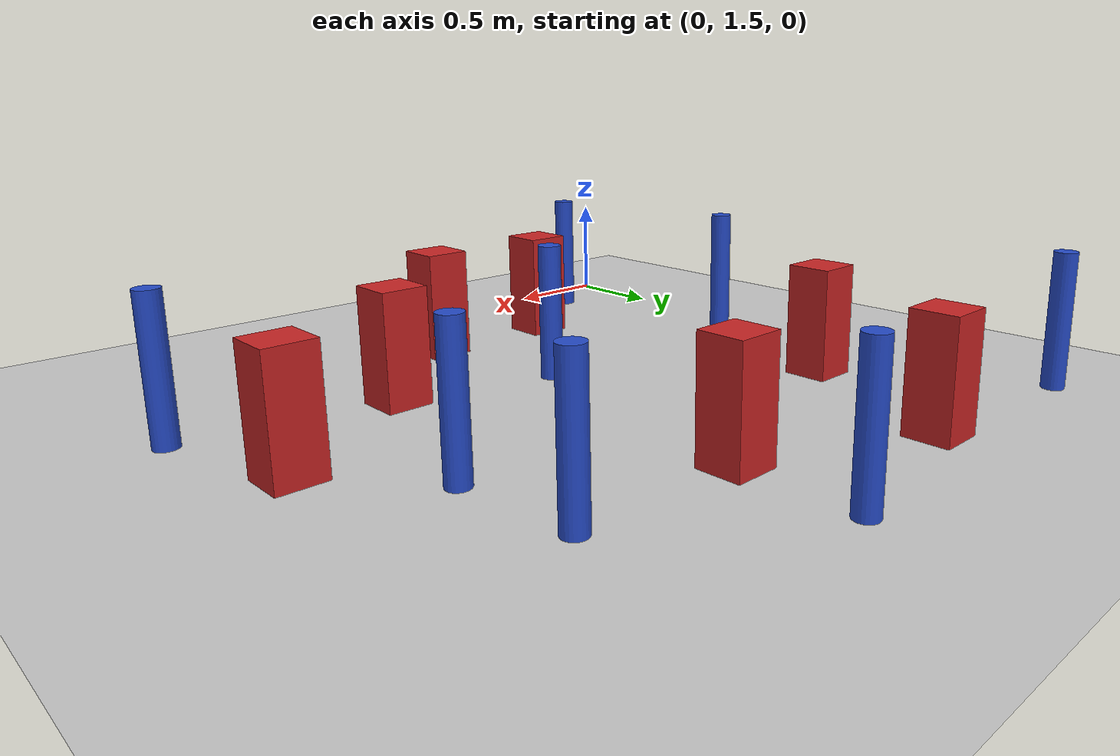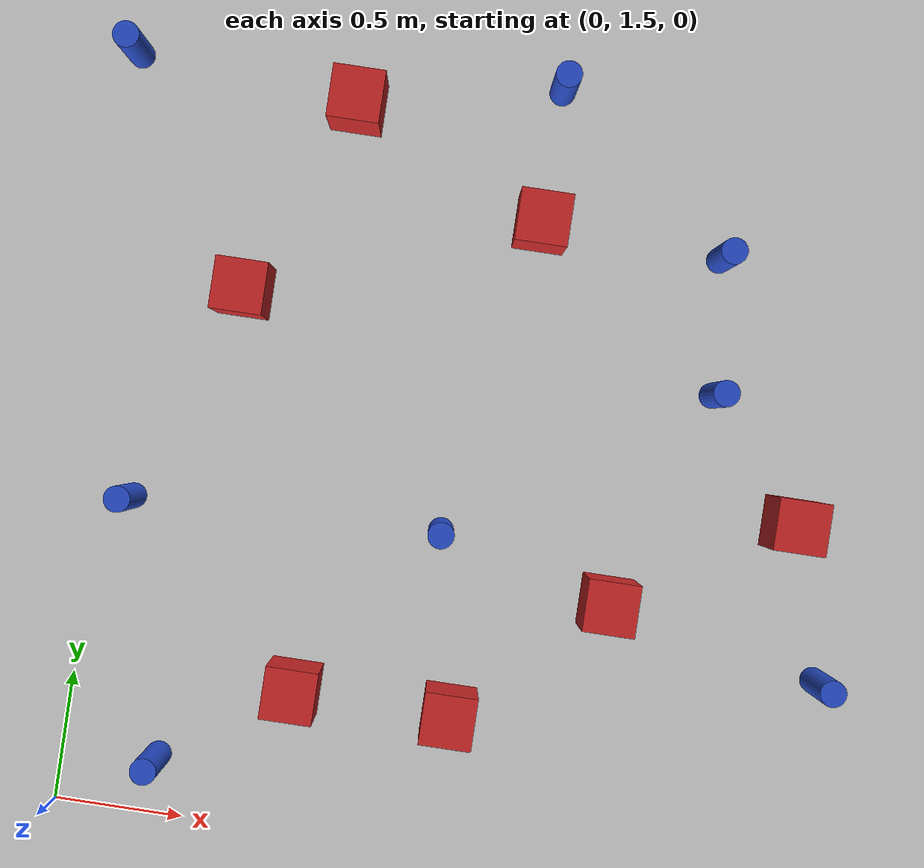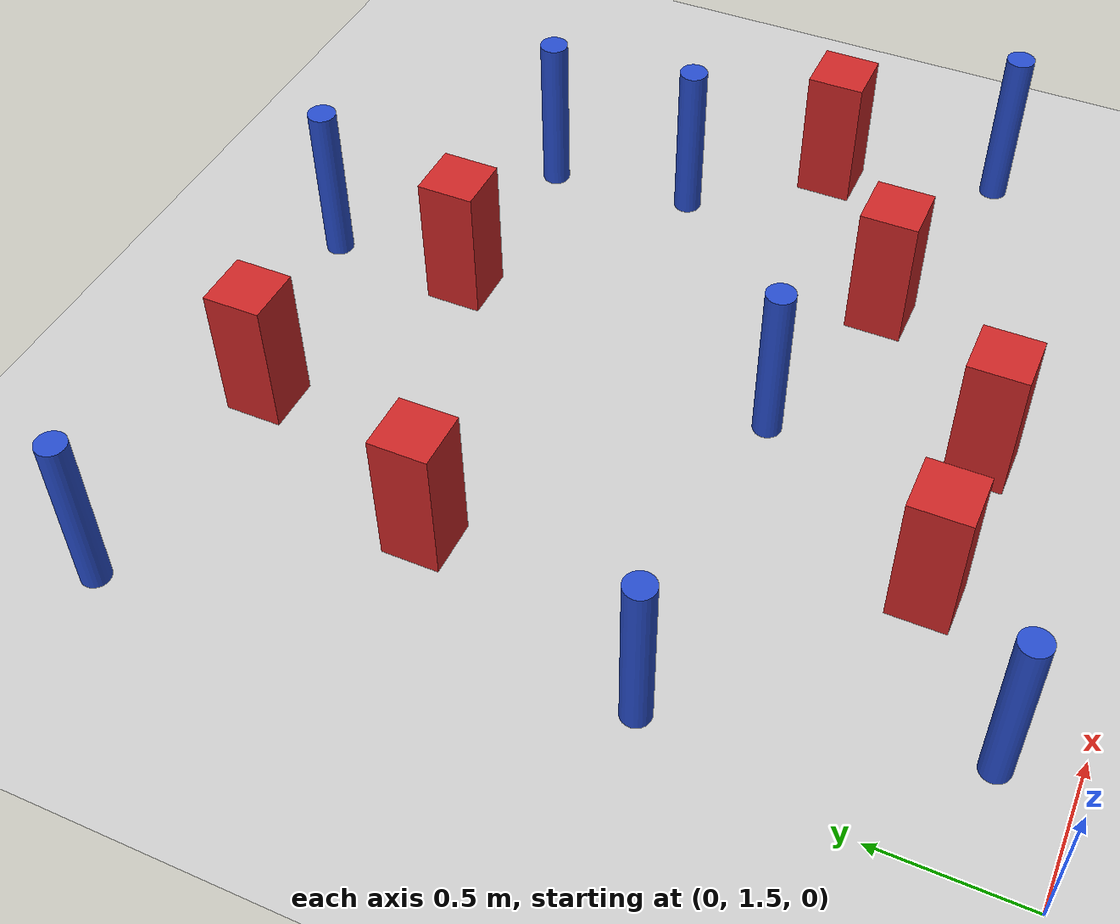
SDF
<sdf version="1.6">
 <world name="default">
  <model name="ground_plane">
   <static>1</static>
   <link name="link">
    <collision name="collision">
     <geometry><plane><normal>0 0 1</normal><size>100 100</size></plane></geometry>
     <surface><friction><ode><mu>100</mu><mu2>50</mu2></ode></friction></surface>
    </collision>
    <visual name="visual">
     <cast_shadows>0</cast_shadows>
     <geometry><plane><normal>0 0 1</normal><size>100 100</size></plane></geometry>
     <material>
      <ambient>1.0 1.0 1.0 1.0</ambient>
      <diffuse>0.8 0.8 0.8 1.0</diffuse>
      <specular>0.01 0.01 0.01 1.000000</specular>
     </material>
    </visual>
   </link>
  </model>
  <model name="pole_obstacle7">
   <static>true</static>
   <pose>2.25478810606 3.96422539197 2.88873142074e-08 -9.90536690801e-09 4.60219948966e-07 -1.20965994976e-07</pose>
   <link name="link">
    <pose>0 0 0.3 0 -0 0</pose>
    <inertial>
     <mass>1</mass>
     <inertia><ixx>0.145833</ixx><ixy>0</ixy><ixz>0</ixz><iyy>0.145833</iyy><iyz>0</iyz><izz>0.125</izz></inertia>
    </inertial>
    <collision name="collision">
     <geometry><cylinder><radius>0.05</radius><length>.6</length></cylinder></geometry>
    </collision>
    <visual name="visual">
     <geometry><cylinder><radius>0.05</radius><length>.6</length></cylinder></geometry>
     <material>
      <script><name>Gazebo/Blue</name><uri>file://media/materials/scripts/gazebo.material</uri></script>
     </material>
    </visual>
   </link>
  </model>
  <model name="pole_obstacle21">
   <static>true</static>
   <pose>2.86034051196 2.3964847344 2.88873142074e-08 -9.90536690232e-09 4.6021994898e-07 -1.20965994968e-07</pose>
   <link name="link">
    <pose>0 0 0.3 0 -0 0</pose>
    <inertial>
     <mass>1</mass>
     <inertia><ixx>0.145833</ixx><ixy>0</ixy><ixz>0</ixz><iyy>0.145833</iyy><iyz>0</iyz><izz>0.125</izz></inertia>
    </inertial>
    <collision name="collision">
     <geometry><cylinder><radius>0.05</radius><length>.6</length></cylinder></geometry>
    </collision>
    <visual name="visual">
     <geometry><cylinder><radius>0.05</radius><length>.6</length></cylinder></geometry>
     <material>
      <script><name>Gazebo/Blue</name><uri>file://media/materials/scripts/gazebo.material</uri></script>
     </material>
    </visual>
   </link>
  </model>
  <model name="pole_obstacle51">
   <static>true</static>
   <pose>-0.0943838447808 4.42185333415 2.88873142074e-08 -9.90536689804e-09 4.6021994899e-07 -1.2096599496e-07</pose>
   <link name="link">
    <pose>0 0 0.3 0 -0 0</pose>
    <inertial>
     <mass>1</mass>
     <inertia><ixx>0.145833</ixx><ixy>0</ixy><ixz>0</ixz><iyy>0.145833</iyy><iyz>0</iyz><izz>0.125</izz></inertia>
    </inertial>
    <collision name="collision">
     <geometry><cylinder><radius>0.05</radius><length>.6</length></cylinder></geometry>
    </collision>
    <visual name="visual">
     <geometry><cylinder><radius>0.05</radius><length>.6</length></cylinder></geometry>
     <material>
      <script><name>Gazebo/Blue</name><uri>file://media/materials/scripts/gazebo.material</uri></script>
     </material>
    </visual>
   </link>
  </model>
  <model name="pole_obstacle76">
   <static>true</static>
   <pose>1.33635282837 2.75982136215 2.88873142074e-08 -9.90536689791e-09 4.6021994899e-07 -1.20965994959e-07</pose>
   <link name="link">
    <pose>0 0 0.3 0 -0 0</pose>
    <inertial>
     <mass>1</mass>
     <inertia><ixx>0.145833</ixx><ixy>0</ixy><ixz>0</ixz><iyy>0.145833</iyy><iyz>0</iyz><izz>0.125</izz></inertia>
    </inertial>
    <collision name="collision">
     <geometry><cylinder><radius>0.05</radius><length>.6</length></cylinder></geometry>
    </collision>
    <visual name="visual">
     <geometry><cylinder><radius>0.05</radius><length>.6</length></cylinder></geometry>
     <material>
      <script><name>Gazebo/Blue</name><uri>file://media/materials/scripts/gazebo.material</uri></script>
     </material>
    </visual>
   </link>
  </model>
  <model name="pole_obstacle114">
   <static>true</static>
   <pose>0.374679235922 1.73036193393 2.88873142074e-08 -9.90536689905e-09 4.60219948988e-07 -1.2096599496e-07</pose>
   <link name="link">
    <pose>0 0 0.3 0 -0 0</pose>
    <inertial>
     <mass>1</mass>
     <inertia><ixx>0.145833</ixx><ixy>0</ixy><ixz>0</ixz><iyy>0.145833</iyy><iyz>0</iyz><izz>0.125</izz></inertia>
    </inertial>
    <collision name="collision">
     <geometry><cylinder><radius>0.05</radius><length>.6</length></cylinder></geometry>
    </collision>
    <visual name="visual">
     <geometry><cylinder><radius>0.05</radius><length>.6</length></cylinder></geometry>
     <material>
      <script><name>Gazebo/Blue</name><uri>file://media/materials/scripts/gazebo.material</uri></script>
     </material>
    </visual>
   </link>
  </model>
  <model name="square_post_obstacle118">
   <static>true</static>
   <pose>1.54305309607 3.99320276237 8.22691968438e-08 7.2212513382e-06 -7.54495500217e-07 2.29674213826e-05</pose>
   <link name="link">
    <pose>0 0 0.25 0 -0 0</pose>
    <inertial>
     <mass>100</mass>
     <inertia>
      <ixx>0.166667</ixx>
      <ixy>0</ixy>
      <ixz>0</ixz>
      <iyy>0.166667</iyy>
      <iyz>0</iyz>
      <izz>0.166667</izz>
     </inertia>
    </inertial>
    <collision name="collision"><geometry><box><size>.2 .2 .5</size></box></geometry></collision>
    <visual name="visual">
     <geometry><box><size>.2 .2 .5</size></box></geometry>
     <material>
      <script><name>Gazebo/Red</name><uri>file://media/materials/scripts/gazebo.material</uri></script>
     </material>
    </visual>
   </link>
  </model>
  <model name="pole_obstacle152">
   <static>true</static>
   <pose>2.30469984575 3.43775363577 2.88873142074e-08 -9.90536690232e-09 4.6021994898e-07 -1.20965994968e-07</pose>
   <link name="link">
    <pose>0 0 0.3 0 -0 0</pose>
    <inertial>
     <mass>1</mass>
     <inertia><ixx>0.145833</ixx><ixy>0</ixy><ixz>0</ixz><iyy>0.145833</iyy><iyz>0</iyz><izz>0.125</izz></inertia>
    </inertial>
    <collision name="collision">
     <geometry><cylinder><radius>0.05</radius><length>.6</length></cylinder></geometry>
    </collision>
    <visual name="visual">
     <geometry><cylinder><radius>0.05</radius><length>.6</length></cylinder></geometry>
     <material>
      <script><name>Gazebo/Blue</name><uri>file://media/materials/scripts/gazebo.material</uri></script>
     </material>
    </visual>
   </link>
  </model>
  <model name="pole_obstacle158">
   <static>true</static>
   <pose>0.128564330782 2.71459476011 2.88873142074e-08 -9.90536692387e-09 4.60219948929e-07 -1.20965994988e-07</pose>
   <link name="link">
    <pose>0 0 0.3 0 -0 0</pose>
    <inertial>
     <mass>1</mass>
     <inertia><ixx>0.145833</ixx><ixy>0</ixy><ixz>0</ixz><iyy>0.145833</iyy><iyz>0</iyz><izz>0.125</izz></inertia>
    </inertial>
    <collision name="collision">
     <geometry><cylinder><radius>0.05</radius><length>.6</length></cylinder></geometry>
    </collision>
    <visual name="visual">
     <geometry><cylinder><radius>0.05</radius><length>.6</length></cylinder></geometry>
     <material>
      <script><name>Gazebo/Blue</name><uri>file://media/materials/scripts/gazebo.material</uri></script>
     </material>
    </visual>
   </link>
  </model>
  <model name="square_post_obstacle166">
   <static>true</static>
   <pose>0.775731106932 4.3450734196 8.22691968438e-08 7.2212513382e-06 -7.54495500217e-07 2.29674213826e-05</pose>
   <link name="link">
    <pose>0 0 0.25 0 -0 0</pose>
    <inertial>
     <mass>100</mass>
     <inertia>
      <ixx>0.166667</ixx>
      <ixy>0</ixy>
      <ixz>0</ixz>
      <iyy>0.166667</iyy>
      <iyz>0</iyz>
      <izz>0.166667</izz>
     </inertia>
    </inertial>
    <collision name="collision"><geometry><box><size>.2 .2 .5</size></box></geometry></collision>
    <visual name="visual">
     <geometry><box><size>.2 .2 .5</size></box></geometry>
     <material>
      <script><name>Gazebo/Red</name><uri>file://media/materials/scripts/gazebo.material</uri></script>
     </material>
    </visual>
   </link>
  </model>
  <model name="square_post_obstacle182">
   <static>true</static>
   <pose>1.46752537294 2.07076103933 8.22691968438e-08 7.2212513382e-06 -7.54495500217e-07 2.29674213826e-05</pose>
   <link name="link">
    <pose>0 0 0.25 0 -0 0</pose>
    <inertial>
     <mass>100</mass>
     <inertia>
      <ixx>0.166667</ixx>
      <ixy>0</ixy>
      <ixz>0</ixz>
      <iyy>0.166667</iyy>
      <iyz>0</iyz>
      <izz>0.166667</izz>
     </inertia>
    </inertial>
    <collision name="collision"><geometry><box><size>.2 .2 .5</size></box></geometry></collision>
    <visual name="visual">
     <geometry><box><size>.2 .2 .5</size></box></geometry>
     <material>
      <script><name>Gazebo/Red</name><uri>file://media/materials/scripts/gazebo.material</uri></script>
     </material>
    </visual>
   </link>
  </model>
  <model name="square_post_obstacle190">
   <static>true</static>
   <pose>0.447531935522 3.57022134452 8.22691968438e-08 7.22125133819e-06 -7.54495500217e-07 2.29674213826e-05</pose>
   <link name="link">
    <pose>0 0 0.25 0 -0 0</pose>
    <inertial>
     <mass>100</mass>
     <inertia>
      <ixx>0.166667</ixx>
      <ixy>0</ixy>
      <ixz>0</ixz>
      <iyy>0.166667</iyy>
      <iyz>0</iyz>
      <izz>0.166667</izz>
     </inertia>
    </inertial>
    <collision name="collision"><geometry><box><size>.2 .2 .5</size></box></geometry></collision>
    <visual name="visual">
     <geometry><box><size>.2 .2 .5</size></box></geometry>
     <material>
      <script><name>Gazebo/Red</name><uri>file://media/materials/scripts/gazebo.material</uri></script>
     </material>
    </visual>
   </link>
  </model>
  <model name="square_post_obstacle197">
   <static>true</static>
   <pose>2.01039641468 2.58095078123 8.22691968438e-08 7.2212513382e-06 -7.54495500217e-07 2.29674213826e-05</pose>
   <link name="link">
    <pose>0 0 0.25 0 -0 0</pose>
    <inertial>
     <mass>100</mass>
     <inertia>
      <ixx>0.166667</ixx>
      <ixy>0</ixy>
      <ixz>0</ixz>
      <iyy>0.166667</iyy>
      <iyz>0</iyz>
      <izz>0.166667</izz>
     </inertia>
    </inertial>
    <collision name="collision"><geometry><box><size>.2 .2 .5</size></box></geometry></collision>
    <visual name="visual">
     <geometry><box><size>.2 .2 .5</size></box></geometry>
     <material>
      <script><name>Gazebo/Red</name><uri>file://media/materials/scripts/gazebo.material</uri></script>
     </material>
    </visual>
   </link>
  </model>
  <model name="square_post_obstacle213">
   <static>true</static>
   <pose>0.861958856187 2.07661705482 8.22691968438e-08 7.2212513382e-06 -7.54495500217e-07 2.29674213826e-05</pose>
   <link name="link">
    <pose>0 0 0.25 0 -0 0</pose>
    <inertial>
     <mass>100</mass>
     <inertia>
      <ixx>0.166667</ixx>
      <ixy>0</ixy>
      <ixz>0</ixz>
      <iyy>0.166667</iyy>
      <iyz>0</iyz>
      <izz>0.166667</izz>
     </inertia>
    </inertial>
    <collision name="collision"><geometry><box><size>.2 .2 .5</size></box></geometry></collision>
    <visual name="visual">
     <geometry><box><size>.2 .2 .5</size></box></geometry>
     <material>
      <script><name>Gazebo/Red</name><uri>file://media/materials/scripts/gazebo.material</uri></script>
     </material>
    </visual>
   </link>
  </model>
  <model name="square_post_obstacle217">
   <static>true</static>
   <pose>2.67203281616 2.98850769763 8.22691968438e-08 7.2212513382e-06 -7.54495500217e-07 2.29674213826e-05</pose>
   <link name="link">
    <pose>0 0 0.25 0 -0 0</pose>
    <inertial>
     <mass>100</mass>
     <inertia>
      <ixx>0.166667</ixx>
      <ixy>0</ixy>
      <ixz>0</ixz>
      <iyy>0.166667</iyy>
      <iyz>0</iyz>
      <izz>0.166667</izz>
     </inertia>
    </inertial>
    <collision name="collision"><geometry><box><size>.2 .2 .5</size></box></geometry></collision>
    <visual name="visual">
     <geometry><box><size>.2 .2 .5</size></box></geometry>
     <material>
      <script><name>Gazebo/Red</name><uri>file://media/materials/scripts/gazebo.material</uri></script>
     </material>
    </visual>
   </link>
  </model>
  <model name="pole_obstacle226">
   <static>true</static>
   <pose>1.55119000913 4.52045002041 2.88873142074e-08 -9.90536689852e-09 4.60219948989e-07 -1.2096599496e-07</pose>
   <link name="link">
    <pose>0 0 0.3 0 -0 0</pose>
    <inertial>
     <mass>1</mass>
     <inertia><ixx>0.145833</ixx><ixy>0</ixy><ixz>0</ixz><iyy>0.145833</iyy><iyz>0</iyz><izz>0.125</izz></inertia>
    </inertial>
    <collision name="collision">
     <geometry><cylinder><radius>0.05</radius><length>.6</length></cylinder></geometry>
    </collision>
    <visual name="visual">
     <geometry><cylinder><radius>0.05</radius><length>.6</length></cylinder></geometry>
     <material>
      <script><name>Gazebo/Blue</name><uri>file://media/materials/scripts/gazebo.material</uri></script>
     </material>
    </visual>
   </link>
  </model>
 </world>
</sdf>
